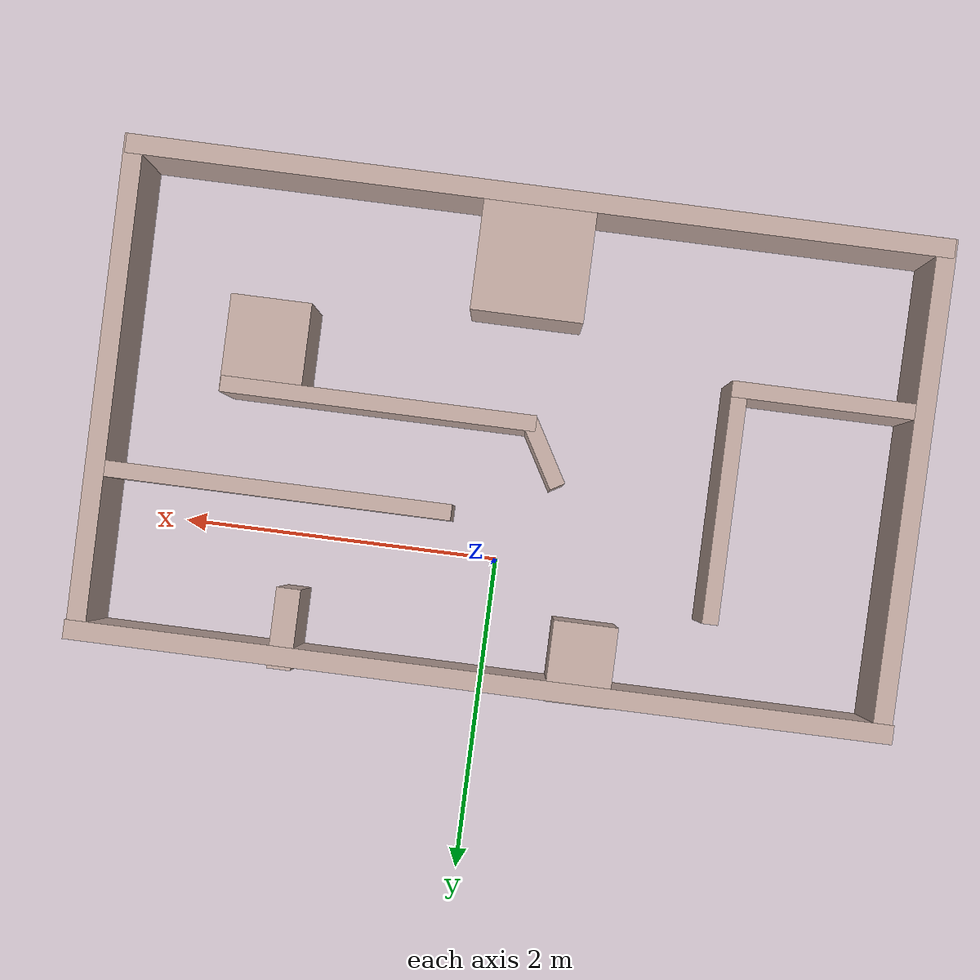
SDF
<?xml version='1.0'?>
<sdf version='1.7'>
  <model name='robo_map4'>
    <model name='from'>
      <pose>0.003972 0.692142 0 0 -0 0</pose>
      <link name='Wall_13'>
        <collision name='Wall_13_Collision'>
          <geometry>
            <box>
              <size>5.12 0.12 0.5</size>
            </box>
          </geometry>
          <pose>0 0 0.25 0 -0 0</pose>
        </collision>
        <visual name='Wall_13_Visual'>
          <pose>0 0 0.25 0 -0 0</pose>
          <geometry>
            <box>
              <size>5.12 0.12 0.5</size>
            </box>
          </geometry>
          <material>
            <script>
              <uri>file://media/materials/scripts/gazebo.material</uri>
              <name>Gazebo/Grey</name>
            </script>
            <ambient>0.760784 0.662745 0.627451 1</ambient>
          </material>
          <meta>
            <layer>0</layer>
          </meta>
        </visual>
        <pose>0 0.06 0 0 -0 0</pose>
      </link>
      <link name='Wall_15'>
        <collision name='Wall_15_Collision'>
          <geometry>
            <box>
              <size>5.12 0.12 0.5</size>
            </box>
          </geometry>
          <pose>0 0 0.25 0 -0 0</pose>
        </collision>
        <visual name='Wall_15_Visual'>
          <pose>0 0 0.25 0 -0 0</pose>
          <geometry>
            <box>
              <size>5.12 0.12 0.5</size>
            </box>
          </geometry>
          <material>
            <script>
              <uri>file://media/materials/scripts/gazebo.material</uri>
              <name>Gazebo/Grey</name>
            </script>
            <ambient>0.760784 0.662745 0.627451 1</ambient>
          </material>
          <meta>
            <layer>0</layer>
          </meta>
        </visual>
        <pose>0 -2.94 0 0 -0 0</pose>
      </link>
      <link name='Wall_17'>
        <collision name='Wall_17_Collision'>
          <geometry>
            <box>
              <size>3 0.12 0.5</size>
            </box>
          </geometry>
          <pose>0 0 0.25 0 -0 0</pose>
        </collision>
        <visual name='Wall_17_Visual'>
          <pose>0 0 0.25 0 -0 0</pose>
          <geometry>
            <box>
              <size>3 0.12 0.5</size>
            </box>
          </geometry>
          <material>
            <script>
              <uri>file://media/materials/scripts/gazebo.material</uri>
              <name>Gazebo/Grey</name>
            </script>
            <ambient>0.760784 0.662745 0.627451 1</ambient>
          </material>
          <meta>
            <layer>0</layer>
          </meta>
        </visual>
        <pose>2.5 -1.5 0 0 -0 -1.5636</pose>
      </link>
      <link name='Wall_5'>
        <collision name='Wall_5_Collision'>
          <geometry>
            <box>
              <size>3 0.12 0.5</size>
            </box>
          </geometry>
          <pose>0 0 0.25 0 -0 0</pose>
        </collision>
        <visual name='Wall_5_Visual'>
          <pose>0 0 0.25 0 -0 0</pose>
          <geometry>
            <box>
              <size>3 0.12 0.5</size>
            </box>
          </geometry>
          <material>
            <script>
              <uri>file://media/materials/scripts/gazebo.material</uri>
              <name>Gazebo/Grey</name>
            </script>
            <ambient>0.760784 0.662745 0.627451 1</ambient>
          </material>
          <meta>
            <layer>0</layer>
          </meta>
        </visual>
        <pose>-2.5 -1.5 0 0 -0 1.5636</pose>
      </link>
      <static>1</static>
    </model>
    <model name='m112'>
      <pose>-0.003972 -0.692138 0 0 -0 0</pose>
      <link name='Wall_15'>
        <collision name='Wall_15_Collision'>
          <geometry>
            <box>
              <size>1.19967 0.1 0.5</size>
            </box>
          </geometry>
          <pose>0 0 0.25 0 -0 0</pose>
        </collision>
        <visual name='Wall_15_Visual'>
          <pose>0 0 0.25 0 -0 0</pose>
          <geometry>
            <box>
              <size>1.19967 0.1 0.5</size>
            </box>
          </geometry>
          <material>
            <script>
              <uri>file://media/materials/scripts/gazebo.material</uri>
              <name>Gazebo/Grey</name>
            </script>
            <ambient>0.760784 0.662745 0.627451 1</ambient>
          </material>
          <meta>
            <layer>0</layer>
          </meta>
        </visual>
        <pose>-1.90358 -0.535023 0 0 -0 0</pose>
      </link>
      <link name='Wall_17'>
        <collision name='Wall_17_Collision'>
          <geometry>
            <box>
              <size>1.5 0.1 0.5</size>
            </box>
          </geometry>
          <pose>0 0 0.25 0 -0 0</pose>
        </collision>
        <visual name='Wall_17_Visual'>
          <pose>0 0 0.25 0 -0 0</pose>
          <geometry>
            <box>
              <size>1.5 0.1 0.5</size>
            </box>
          </geometry>
          <material>
            <script>
              <uri>file://media/materials/scripts/gazebo.material</uri>
              <name>Gazebo/Grey</name>
            </script>
            <ambient>0.760784 0.662745 0.627451 1</ambient>
          </material>
          <meta>
            <layer>0</layer>
          </meta>
        </visual>
        <pose>-1.35358 0.164977 0 0 -0 1.5708</pose>
      </link>
      <link name='Wall_19'>
        <collision name='Wall_19_Collision'>
          <geometry>
            <box>
              <size>0.71 0.7 0.5</size>
            </box>
          </geometry>
          <pose>0 0 0.25 0 -0 0</pose>
        </collision>
        <visual name='Wall_19_Visual'>
          <pose>0 0 0.25 0 -0 0</pose>
          <geometry>
            <box>
              <size>0.71 0.7 0.5</size>
            </box>
          </geometry>
          <material>
            <script>
              <uri>file://media/materials/scripts/gazebo.material</uri>
              <name>Gazebo/Grey</name>
            </script>
            <ambient>0.760784 0.662745 0.627451 1</ambient>
          </material>
          <meta>
            <layer>0</layer>
          </meta>
        </visual>
        <pose>-0.001101 -1.16798 0 0 -0 -1.5708</pose>
      </link>
      <link name='Wall_21'>
        <collision name='Wall_21_Collision'>
          <geometry>
            <box>
              <size>1.95 0.1 0.5</size>
            </box>
          </geometry>
          <pose>0 0 0.25 0 -0 0</pose>
        </collision>
        <visual name='Wall_21_Visual'>
          <pose>0 0 0.25 0 -0 0</pose>
          <geometry>
            <box>
              <size>1.95 0.1 0.5</size>
            </box>
          </geometry>
          <material>
            <script>
              <uri>file://media/materials/scripts/gazebo.material</uri>
              <name>Gazebo/Grey</name>
            </script>
            <ambient>0.760784 0.662745 0.627451 1</ambient>
          </material>
          <meta>
            <layer>0</layer>
          </meta>
        </visual>
        <pose>0.832356 -0.168854 0 0 -0 0</pose>
      </link>
      <link name='Wall_23'>
        <collision name='Wall_23_Collision'>
          <geometry>
            <box>
              <size>0.6 0.5 0.5</size>
            </box>
          </geometry>
          <pose>0 0 0.25 0 -0 0</pose>
        </collision>
        <visual name='Wall_23_Visual'>
          <pose>0 0 0.25 0 -0 0</pose>
          <geometry>
            <box>
              <size>0.6 0.5 0.5</size>
            </box>
          </geometry>
          <material>
            <script>
              <uri>file://media/materials/scripts/gazebo.material</uri>
              <name>Gazebo/Grey</name>
            </script>
            <ambient>0.760784 0.662745 0.627451 1</ambient>
          </material>
          <meta>
            <layer>0</layer>
          </meta>
        </visual>
        <pose>1.56012 -0.424565 0 0 -0 -1.5708</pose>
      </link>
      <link name='Wall_25'>
        <collision name='Wall_25_Collision'>
          <geometry>
            <box>
              <size>2.2 0.1 0.5</size>
            </box>
          </geometry>
          <pose>0 0 0.25 0 -0 0</pose>
        </collision>
        <visual name='Wall_25_Visual'>
          <pose>0 0 0.25 0 -0 0</pose>
          <geometry>
            <box>
              <size>2.2 0.1 0.5</size>
            </box>
          </geometry>
          <material>
            <script>
              <uri>file://media/materials/scripts/gazebo.material</uri>
              <name>Gazebo/Grey</name>
            </script>
            <ambient>0.760784 0.662745 0.627451 1</ambient>
          </material>
          <meta>
            <layer>0</layer>
          </meta>
        </visual>
        <pose>1.40342 0.436977 0 0 -0 0</pose>
      </link>
      <link name='Wall_27'>
        <collision name='Wall_27_Collision'>
          <geometry>
            <box>
              <size>0.449906 0.1 0.5</size>
            </box>
          </geometry>
          <pose>0 0 0.25 0 -0 0</pose>
        </collision>
        <visual name='Wall_27_Visual'>
          <pose>0 0 0.25 0 -0 0</pose>
          <geometry>
            <box>
              <size>0.449906 0.1 0.5</size>
            </box>
          </geometry>
          <material>
            <script>
              <uri>file://media/materials/scripts/gazebo.material</uri>
              <name>Gazebo/Grey</name>
            </script>
            <ambient>0.760784 0.662745 0.627451 1</ambient>
          </material>
          <meta>
            <layer>0</layer>
          </meta>
        </visual>
        <pose>-0.2088 0.002737 0 0 -0 -1.04704</pose>
      </link>
      <link name='Wall_29'>
        <collision name='Wall_29_Collision'>
          <geometry>
            <box>
              <size>0.5 0.4 0.5</size>
            </box>
          </geometry>
          <pose>0 0 0.25 0 -0 0</pose>
        </collision>
        <visual name='Wall_29_Visual'>
          <pose>0 0 0.25 0 -0 0</pose>
          <geometry>
            <box>
              <size>0.5 0.4 0.5</size>
            </box>
          </geometry>
          <material>
            <script>
              <uri>file://media/materials/scripts/gazebo.material</uri>
              <name>Gazebo/Grey</name>
            </script>
            <ambient>0.760784 0.662745 0.627451 1</ambient>
          </material>
          <meta>
            <layer>0</layer>
          </meta>
        </visual>
        <pose>-0.6033 1.25831 0 0 -0 -1.5708</pose>
      </link>
      <link name='Wall_31'>
        <collision name='Wall_31_Collision'>
          <geometry>
            <box>
              <size>0.5 0.15 0.5</size>
            </box>
          </geometry>
          <pose>0 0 0.25 0 -0 0</pose>
        </collision>
        <visual name='Wall_31_Visual'>
          <pose>0 0 0.25 0 -0 0</pose>
          <geometry>
            <box>
              <size>0.5 0.15 0.5</size>
            </box>
          </geometry>
          <material>
            <script>
              <uri>file://media/materials/scripts/gazebo.material</uri>
              <name>Gazebo/Grey</name>
            </script>
            <ambient>0.760784 0.662745 0.627451 1</ambient>
          </material>
          <meta>
            <layer>0</layer>
          </meta>
        </visual>
        <pose>1.23142 1.27298 0 0 -0 -1.5708</pose>
      </link>
      <static>1</static>
    </model>
    <static>1</static>
    <allow_auto_disable>1</allow_auto_disable>
  </model>
</sdf>
